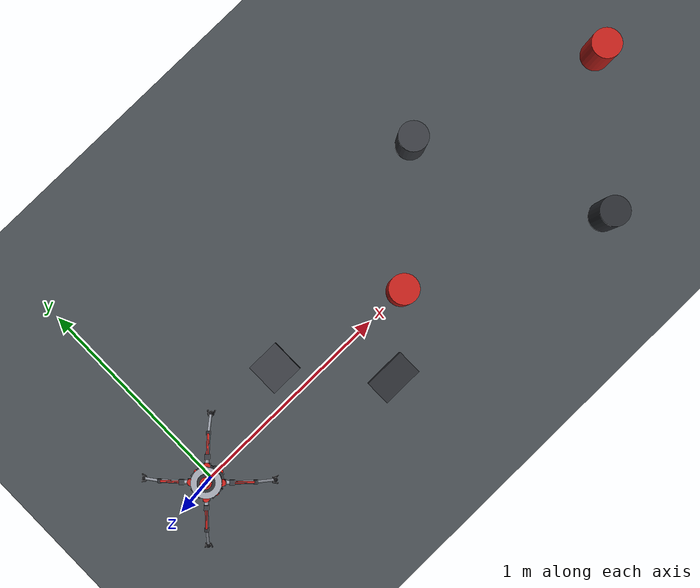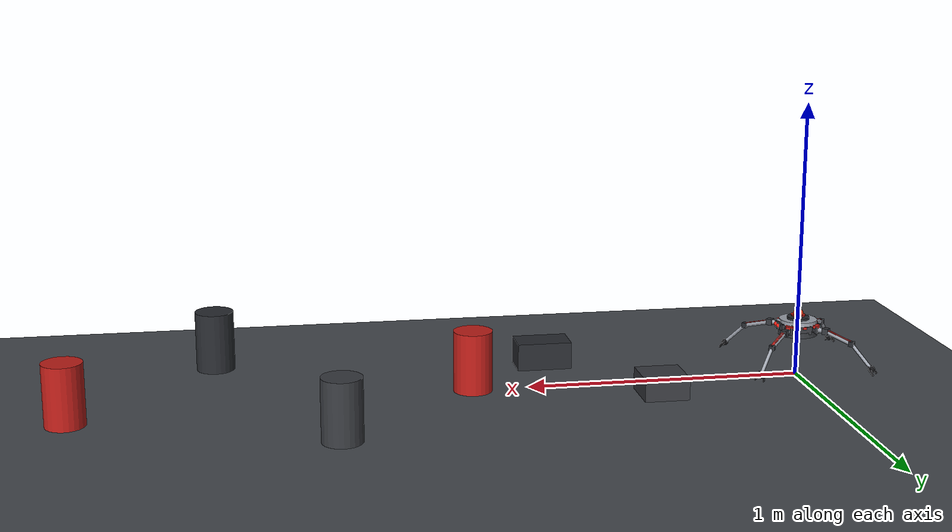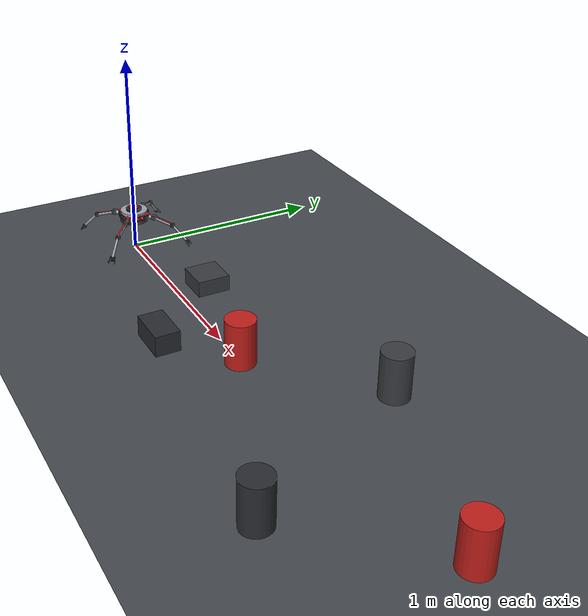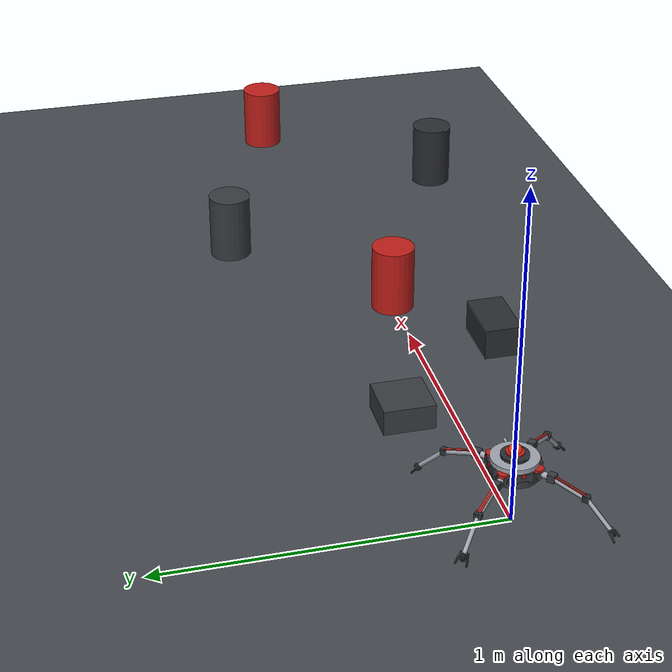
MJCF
<mujoco model="spider_quad">
  <!-- 机械自爆蜘蛛外形（红警恐怖机器人那种），关节仍是 4 腿 × 3 轴。 -->
  <compiler angle="radian" autolimits="true"/>
  <option timestep="0.002" gravity="0 0 -9.81"/>

  <visual>
    <headlight ambient="0.45 0.45 0.48" diffuse="0.7 0.7 0.72" specular="0.25 0.25 0.25"/>
    <rgba haze="0.15 0.18 0.22 1"/>
    <global azimuth="-140" elevation="-22"/>
  </visual>

  <default>
    <joint damping="0.15" armature="0.008" limited="true"/>
    <geom friction="1.4 0.05 0.01" condim="3"/>
    <motor gear="1" ctrlrange="-6 6" ctrllimited="true"/>
    <default class="visual">
      <geom contype="0" conaffinity="0" group="1" density="0"/>
    </default>
  </default>

  <asset>
    <texture type="skybox" builtin="gradient" rgb1="0.55 0.68 0.82" rgb2="0.95 0.96 0.98" width="256" height="512"/>
    <texture name="grid" type="2d" builtin="checker" rgb1="0.32 0.34 0.36" rgb2="0.22 0.24 0.26"
      width="256" height="256"/>
    <material name="grid" texture="grid" texrepeat="6 6" reflectance="0.12"/>
    <material name="gunmetal" rgba="0.16 0.17 0.19 1" specular="0.35" shininess="0.35"/>
    <material name="steel" rgba="0.62 0.64 0.68 1" specular="0.85" shininess="0.8"/>
    <material name="darksteel" rgba="0.22 0.23 0.25 1" specular="0.5" shininess="0.45"/>
    <material name="hazard" rgba="0.75 0.12 0.10 1" specular="0.4" shininess="0.3"/>
    <material name="glow_red" rgba="1.0 0.12 0.08 1" emission="1.2" specular="0.2"/>
    <material name="glow_core" rgba="1.0 0.25 0.08 1" emission="1.4"/>
    <material name="claw" rgba="0.08 0.08 0.09 1" specular="0.6" shininess="0.7"/>
  </asset>

  <worldbody>
    <light pos="0.4 0.3 1.6" dir="-0.2 -0.15 -1" diffuse="0.9 0.9 0.92" specular="0.3 0.3 0.3"/>
    <light pos="-0.3 -0.4 1.2" dir="0.1 0.2 -1" diffuse="0.45 0.48 0.52"/>
    <geom name="floor" type="plane" size="0 0 0.05" material="grid"/>
    <geom name="crate_a" type="box" pos="0.55 0.15 0.04" size="0.08 0.08 0.04" material="darksteel"/>
    <geom name="crate_b" type="box" pos="0.90 -0.25 0.05" size="0.10 0.06 0.05" material="gunmetal"/>
    <!-- 避障柱：mocap 方便挪位置，播放时不再改静态 geom 导致闪烁 -->
    <body name="obs_0" mocap="true" pos="1.20 0.00 0.11">
      <geom name="obs_0" type="cylinder" size="0.07 0.11" material="hazard"/>
    </body>
    <body name="obs_1" mocap="true" pos="1.70 0.45 0.11">
      <geom name="obs_1" type="cylinder" size="0.07 0.11" material="darksteel"/>
    </body>
    <body name="obs_2" mocap="true" pos="2.10 -0.40 0.11">
      <geom name="obs_2" type="cylinder" size="0.07 0.11" material="gunmetal"/>
    </body>
    <body name="obs_3" mocap="true" pos="2.60 0.15 0.11">
      <geom name="obs_3" type="cylinder" size="0.07 0.11" material="hazard"/>
    </body>

    <body name="torso" pos="0 0 0.18">
      <freejoint name="root"/>
      <inertial mass="0.7" pos="0 0 0" diaginertia="0.003 0.003 0.004"/>
      <site name="imu" size="0.006" pos="0 0 0.02"/>

      <!-- 碰撞用核心 -->
      <geom name="torso" type="cylinder" size="0.058 0.020" material="gunmetal"/>

      <!-- 装甲层：底盘、顶盖、一圈斜甲 -->
      <geom class="visual" type="cylinder" size="0.072 0.010" pos="0 0 -0.016" material="darksteel"/>
      <geom class="visual" type="cylinder" size="0.068 0.008" pos="0 0 0.022" material="steel"/>
      <geom class="visual" type="cylinder" size="0.040 0.006" pos="0 0 0.032" material="gunmetal"/>
      <geom class="visual" type="box" size="0.028 0.070 0.014" pos="0 0 0.002" material="darksteel"/>
      <geom class="visual" type="box" size="0.070 0.028 0.014" pos="0 0 0.002" material="darksteel"/>

      <!-- 红色警戒条 -->
      <geom class="visual" type="box" size="0.074 0.006 0.004" pos="0 0 0.012" material="hazard"/>
      <geom class="visual" type="box" size="0.006 0.074 0.004" pos="0 0 0.012" material="hazard"/>

      <!-- 顶部反应堆 / 自爆核心 -->
      <geom class="visual" type="cylinder" size="0.022 0.004" pos="0 0 0.040" material="steel"/>
      <geom class="visual" type="sphere" size="0.018" pos="0 0 0.050" material="glow_core"/>
      <geom class="visual" type="cylinder" size="0.026 0.002" pos="0 0 0.044" material="hazard"/>

      <!-- 前方双红眼传感器 -->
      <geom class="visual" type="box" size="0.016 0.028 0.010" pos="0.062 0 0.008" material="gunmetal"/>
      <geom class="visual" type="sphere" size="0.008" pos="0.078 0.012 0.010" material="glow_red"/>
      <geom class="visual" type="sphere" size="0.008" pos="0.078 -0.012 0.010" material="glow_red"/>
      <geom class="visual" type="cylinder" size="0.004 0.012" pos="0.070 0 0.026" euler="0 1.2 0" material="steel"/>

      <!-- 测距射线（site 的 +z 是射线方向），给避障用 -->
      <site name="rf_ll" pos="0.04 0.05 0.02" size="0.004" rgba="0.2 0.9 0.3 0.35" zaxis="0.707 0.707 0"/>
      <site name="rf_l" pos="0.05 0.03 0.02" size="0.004" rgba="0.2 0.9 0.3 0.35" zaxis="0.866 0.5 0"/>
      <site name="rf_c" pos="0.06 0.00 0.02" size="0.004" rgba="0.2 0.9 0.3 0.35" zaxis="1 0 0"/>
      <site name="rf_r" pos="0.05 -0.03 0.02" size="0.004" rgba="0.2 0.9 0.3 0.35" zaxis="0.866 -0.5 0"/>
      <site name="rf_rr" pos="0.04 -0.05 0.02" size="0.004" rgba="0.2 0.9 0.3 0.35" zaxis="0.707 -0.707 0"/>

      <!-- 左前 45° -->
      <body name="FL_coxa" pos="0.0495 0.0495 0" euler="0 0 0.785398">
        <joint name="FL_coxa" type="hinge" axis="0 0 1" range="-0.9 0.9"/>
        <inertial mass="0.04" pos="0.02 0 0" diaginertia="2e-5 2e-5 2e-5"/>
        <geom type="capsule" fromto="0 0 0 0.04 0 0" size="0.009" material="steel"/>
        <geom class="visual" type="box" size="0.012 0.014 0.012" pos="0 0 0" material="gunmetal"/>
        <geom class="visual" type="cylinder" size="0.015 0.005" pos="0 0 0.012" material="hazard"/>
        <body name="FL_femur" pos="0.04 0 0">
          <joint name="FL_femur" type="hinge" axis="0 1 0" range="-0.3 1.3"/>
          <inertial mass="0.06" pos="0.05 0 -0.015" diaginertia="4e-5 4e-5 4e-5"/>
          <geom type="capsule" fromto="0 0 0 0.10 0 -0.03" size="0.008" material="steel"/>
          <geom class="visual" type="box" size="0.011 0.011 0.011" material="darksteel"/>
          <geom class="visual" type="box" size="0.048 0.005 0.005" pos="0.050 0 -0.012" euler="0 0.29 0" material="hazard"/>
          <body name="FL_tibia" pos="0.10 0 -0.03">
            <joint name="FL_tibia" type="hinge" axis="0 1 0" range="-0.2 1.6"/>
            <inertial mass="0.05" pos="0.04 0 -0.04" diaginertia="3e-5 3e-5 3e-5"/>
            <geom type="capsule" fromto="0 0 0 0.08 0 -0.08" size="0.006" material="steel"/>
            <geom class="visual" type="box" size="0.009 0.009 0.009" material="gunmetal"/>
            <geom name="FL_foot" type="sphere" pos="0.08 0 -0.08" size="0.012" material="claw"/>
            <geom class="visual" type="capsule" fromto="0.072 -0.010 -0.072 0.092 -0.016 -0.096" size="0.0035" material="claw"/>
            <geom class="visual" type="capsule" fromto="0.072 0.010 -0.072 0.092 0.016 -0.096" size="0.0035" material="claw"/>
          </body>
        </body>
      </body>

      <!-- 左后 135° -->
      <body name="RL_coxa" pos="-0.0495 0.0495 0" euler="0 0 2.356194">
        <joint name="RL_coxa" type="hinge" axis="0 0 1" range="-0.9 0.9"/>
        <inertial mass="0.04" pos="0.02 0 0" diaginertia="2e-5 2e-5 2e-5"/>
        <geom type="capsule" fromto="0 0 0 0.04 0 0" size="0.009" material="steel"/>
        <geom class="visual" type="box" size="0.012 0.014 0.012" pos="0 0 0" material="gunmetal"/>
        <geom class="visual" type="cylinder" size="0.015 0.005" pos="0 0 0.012" material="hazard"/>
        <body name="RL_femur" pos="0.04 0 0">
          <joint name="RL_femur" type="hinge" axis="0 1 0" range="-0.3 1.3"/>
          <inertial mass="0.06" pos="0.05 0 -0.015" diaginertia="4e-5 4e-5 4e-5"/>
          <geom type="capsule" fromto="0 0 0 0.10 0 -0.03" size="0.008" material="steel"/>
          <geom class="visual" type="box" size="0.011 0.011 0.011" material="darksteel"/>
          <geom class="visual" type="box" size="0.048 0.005 0.005" pos="0.050 0 -0.012" euler="0 0.29 0" material="hazard"/>
          <body name="RL_tibia" pos="0.10 0 -0.03">
            <joint name="RL_tibia" type="hinge" axis="0 1 0" range="-0.2 1.6"/>
            <inertial mass="0.05" pos="0.04 0 -0.04" diaginertia="3e-5 3e-5 3e-5"/>
            <geom type="capsule" fromto="0 0 0 0.08 0 -0.08" size="0.006" material="steel"/>
            <geom class="visual" type="box" size="0.009 0.009 0.009" material="gunmetal"/>
            <geom name="RL_foot" type="sphere" pos="0.08 0 -0.08" size="0.012" material="claw"/>
            <geom class="visual" type="capsule" fromto="0.072 -0.010 -0.072 0.092 -0.016 -0.096" size="0.0035" material="claw"/>
            <geom class="visual" type="capsule" fromto="0.072 0.010 -0.072 0.092 0.016 -0.096" size="0.0035" material="claw"/>
          </body>
        </body>
      </body>

      <!-- 右后 225° -->
      <body name="RR_coxa" pos="-0.0495 -0.0495 0" euler="0 0 3.926991">
        <joint name="RR_coxa" type="hinge" axis="0 0 1" range="-0.9 0.9"/>
        <inertial mass="0.04" pos="0.02 0 0" diaginertia="2e-5 2e-5 2e-5"/>
        <geom type="capsule" fromto="0 0 0 0.04 0 0" size="0.009" material="steel"/>
        <geom class="visual" type="box" size="0.012 0.014 0.012" pos="0 0 0" material="gunmetal"/>
        <geom class="visual" type="cylinder" size="0.015 0.005" pos="0 0 0.012" material="hazard"/>
        <body name="RR_femur" pos="0.04 0 0">
          <joint name="RR_femur" type="hinge" axis="0 1 0" range="-0.3 1.3"/>
          <inertial mass="0.06" pos="0.05 0 -0.015" diaginertia="4e-5 4e-5 4e-5"/>
          <geom type="capsule" fromto="0 0 0 0.10 0 -0.03" size="0.008" material="steel"/>
          <geom class="visual" type="box" size="0.011 0.011 0.011" material="darksteel"/>
          <geom class="visual" type="box" size="0.048 0.005 0.005" pos="0.050 0 -0.012" euler="0 0.29 0" material="hazard"/>
          <body name="RR_tibia" pos="0.10 0 -0.03">
            <joint name="RR_tibia" type="hinge" axis="0 1 0" range="-0.2 1.6"/>
            <inertial mass="0.05" pos="0.04 0 -0.04" diaginertia="3e-5 3e-5 3e-5"/>
            <geom type="capsule" fromto="0 0 0 0.08 0 -0.08" size="0.006" material="steel"/>
            <geom class="visual" type="box" size="0.009 0.009 0.009" material="gunmetal"/>
            <geom name="RR_foot" type="sphere" pos="0.08 0 -0.08" size="0.012" material="claw"/>
            <geom class="visual" type="capsule" fromto="0.072 -0.010 -0.072 0.092 -0.016 -0.096" size="0.0035" material="claw"/>
            <geom class="visual" type="capsule" fromto="0.072 0.010 -0.072 0.092 0.016 -0.096" size="0.0035" material="claw"/>
          </body>
        </body>
      </body>

      <!-- 右前 315° -->
      <body name="FR_coxa" pos="0.0495 -0.0495 0" euler="0 0 -0.785398">
        <joint name="FR_coxa" type="hinge" axis="0 0 1" range="-0.9 0.9"/>
        <inertial mass="0.04" pos="0.02 0 0" diaginertia="2e-5 2e-5 2e-5"/>
        <geom type="capsule" fromto="0 0 0 0.04 0 0" size="0.009" material="steel"/>
        <geom class="visual" type="box" size="0.012 0.014 0.012" pos="0 0 0" material="gunmetal"/>
        <geom class="visual" type="cylinder" size="0.015 0.005" pos="0 0 0.012" material="hazard"/>
        <body name="FR_femur" pos="0.04 0 0">
          <joint name="FR_femur" type="hinge" axis="0 1 0" range="-0.3 1.3"/>
          <inertial mass="0.06" pos="0.05 0 -0.015" diaginertia="4e-5 4e-5 4e-5"/>
          <geom type="capsule" fromto="0 0 0 0.10 0 -0.03" size="0.008" material="steel"/>
          <geom class="visual" type="box" size="0.011 0.011 0.011" material="darksteel"/>
          <geom class="visual" type="box" size="0.048 0.005 0.005" pos="0.050 0 -0.012" euler="0 0.29 0" material="hazard"/>
          <body name="FR_tibia" pos="0.10 0 -0.03">
            <joint name="FR_tibia" type="hinge" axis="0 1 0" range="-0.2 1.6"/>
            <inertial mass="0.05" pos="0.04 0 -0.04" diaginertia="3e-5 3e-5 3e-5"/>
            <geom type="capsule" fromto="0 0 0 0.08 0 -0.08" size="0.006" material="steel"/>
            <geom class="visual" type="box" size="0.009 0.009 0.009" material="gunmetal"/>
            <geom name="FR_foot" type="sphere" pos="0.08 0 -0.08" size="0.012" material="claw"/>
            <geom class="visual" type="capsule" fromto="0.072 -0.010 -0.072 0.092 -0.016 -0.096" size="0.0035" material="claw"/>
            <geom class="visual" type="capsule" fromto="0.072 0.010 -0.072 0.092 0.016 -0.096" size="0.0035" material="claw"/>
          </body>
        </body>
      </body>
    </body>
  </worldbody>

  <actuator>
    <motor name="FL_coxa" joint="FL_coxa"/>
    <motor name="FL_femur" joint="FL_femur"/>
    <motor name="FL_tibia" joint="FL_tibia"/>
    <motor name="RL_coxa" joint="RL_coxa"/>
    <motor name="RL_femur" joint="RL_femur"/>
    <motor name="RL_tibia" joint="RL_tibia"/>
    <motor name="RR_coxa" joint="RR_coxa"/>
    <motor name="RR_femur" joint="RR_femur"/>
    <motor name="RR_tibia" joint="RR_tibia"/>
    <motor name="FR_coxa" joint="FR_coxa"/>
    <motor name="FR_femur" joint="FR_femur"/>
    <motor name="FR_tibia" joint="FR_tibia"/>
  </actuator>

  <sensor>
    <framequat name="imu_quat" objtype="site" objname="imu"/>
    <gyro name="imu_gyro" site="imu"/>
    <accelerometer name="imu_acc" site="imu"/>
    <rangefinder name="rf_ll" site="rf_ll" cutoff="1.4"/>
    <rangefinder name="rf_l" site="rf_l" cutoff="1.4"/>
    <rangefinder name="rf_c" site="rf_c" cutoff="1.4"/>
    <rangefinder name="rf_r" site="rf_r" cutoff="1.4"/>
    <rangefinder name="rf_rr" site="rf_rr" cutoff="1.4"/>
  </sensor>

  <keyframe>
    <key name="stand" qpos="0 0 0.18 1 0 0 0
      0 0.25 0.45
      0 0.25 0.45
      0 0.25 0.45
      0 0.25 0.45"/>
  </keyframe>
</mujoco>
